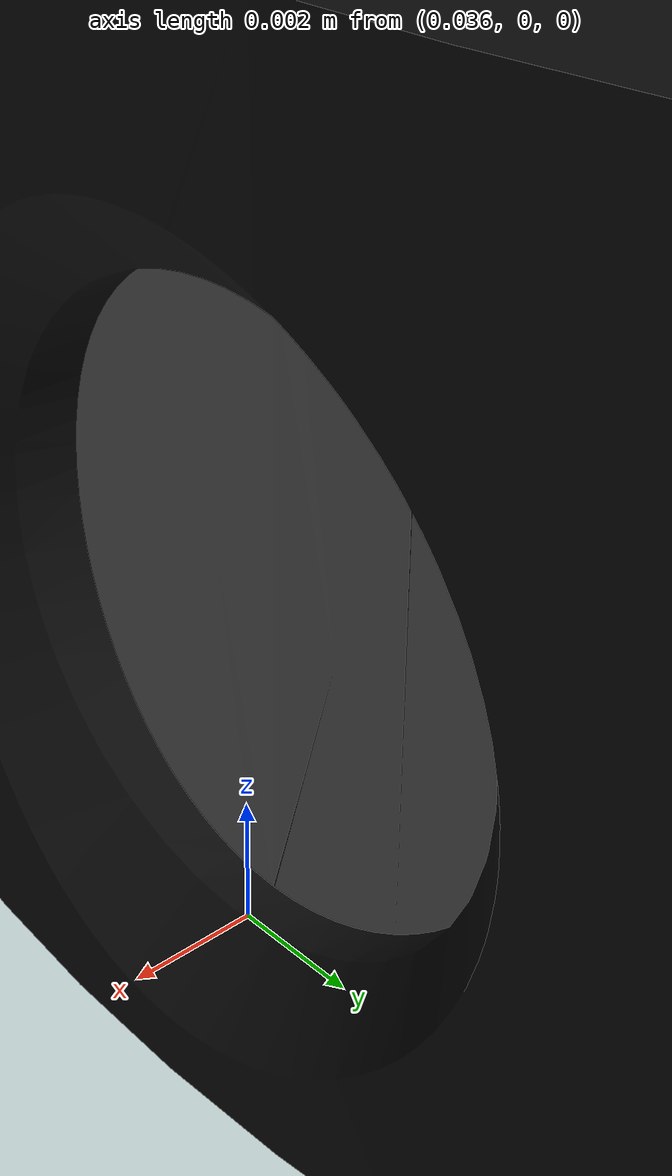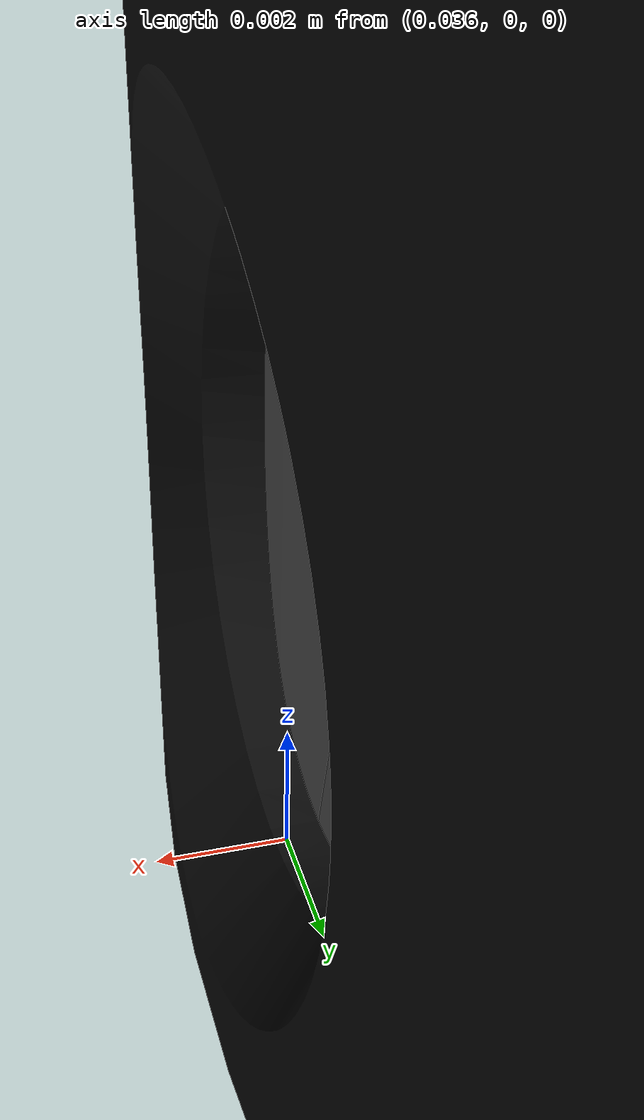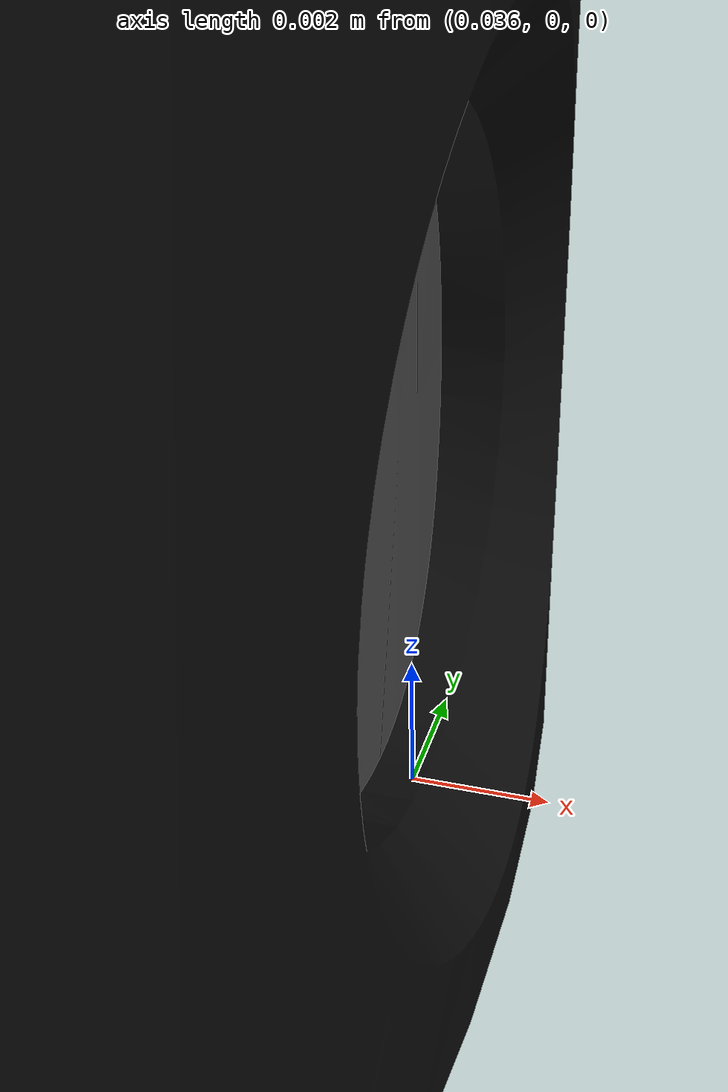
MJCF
<mujoco model="ur_to_robotiq_adapter">
  <default>
    <default class="visual">
      <geom group="2" type="mesh" contype="0" conaffinity="0"/>
    </default>
    <default class="collision">
      <geom group="3" type="mesh"/>
    </default>
  </default>
  <asset>
    <material name="material_ur_to_robotiq_adapter_0" specular="0.20000000000000004" shininess="1.0" rgba="0.03921569 0.03921569 0.03921569 1.0"/>
    <material name="material_ur_to_robotiq_adapter_1" specular="0.20000000000000004" shininess="1.0" rgba="0.29803922 0.29803922 0.29803922 1.0"/>
    <mesh file="ur_to_robotiq_adapter_0.obj"/>
    <mesh file="ur_to_robotiq_adapter_1.obj"/>
  </asset>
  <worldbody>
    <body name="ur_to_robotiq_adapter">
      <geom mesh="ur_to_robotiq_adapter_0" material="material_ur_to_robotiq_adapter_1" class="visual"/>
      <geom mesh="ur_to_robotiq_adapter_1" material="material_ur_to_robotiq_adapter_0" class="visual"/>
      <geom mesh="ur_to_robotiq_adapter_0" class="collision"/>
      <geom mesh="ur_to_robotiq_adapter_1" class="collision"/>
    </body>
  </worldbody>
</mujoco>
